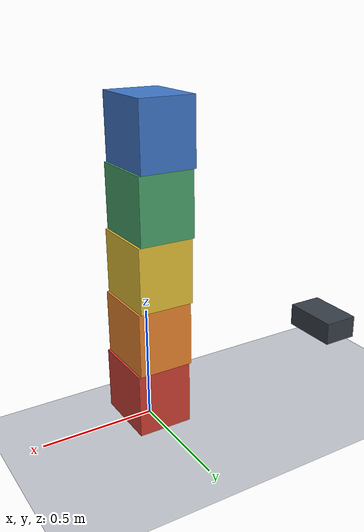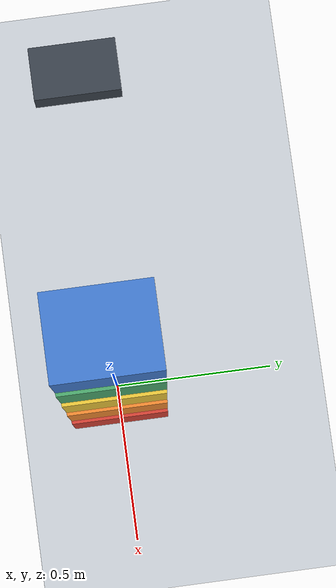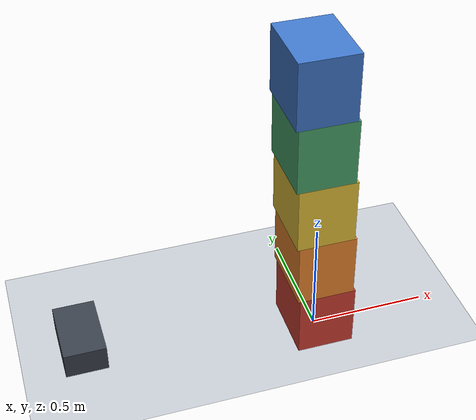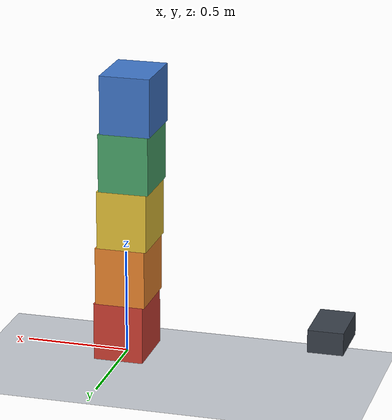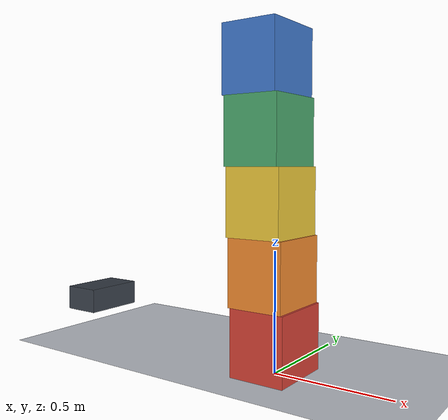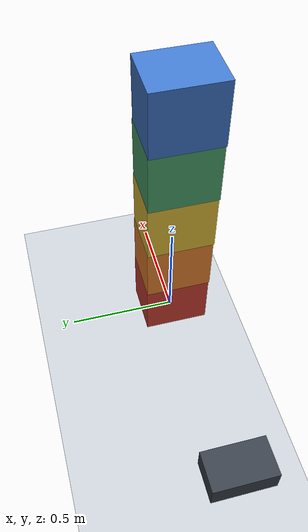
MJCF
<mujoco model="five_block_topple">
  <compiler angle="radian"/>
  <option timestep="0.002" gravity="0 0 -9.81" integrator="implicitfast" solver="Newton" iterations="80"/>
  <size nconmax="200" njmax="1000"/>
  <statistic center="0 0 0.65" extent="2.4"/>

  <visual>
    <headlight ambient="0.35 0.35 0.35" diffuse="0.65 0.65 0.65" specular="0.15 0.15 0.15"/>
  </visual>

  <worldbody>
    <light name="overhead" pos="-2 -3 5" dir="0.3 0.4 -1"/>
    <geom name="floor" type="plane" pos="0 0 0" size="3 3 0.1" friction="0.8 0.01 0.001" condim="4" rgba="0.78 0.80 0.83 1"/>

    <!-- A powered, horizontally guided ram approaches from the left. -->
    <!-- Its face contacts only the bottom block; its travel is limited. -->
    <body name="pusher" pos="-1 0 0.20">
      <joint name="pusher_slide" type="slide" axis="1 0 0" limited="true" range="0 1.45" damping="0.3" armature="0.01" solreflimit="0.01 1"/>
      <geom name="pusher_geom" type="box" size="0.085 0.14 0.055" mass="3" friction="0.35 0.005 0.0005" condim="3" solref="0.008 1" solimp="0.95 0.99 0.001" rgba="0.22 0.25 0.29 1"/>
    </body>

    <!-- Small, stable offsets favor overturning once the base is displaced. -->
    <body name="block1" pos="0 0 0.14">
      <freejoint name="block1_free"/>
      <geom name="block1_geom" type="box" size="0.12 0.15 0.14" mass="0.65" friction="0.7 0.008 0.0005" condim="4" solref="0.008 1" solimp="0.95 0.99 0.001" rgba="0.82 0.25 0.20 1"/>
    </body>

    <body name="block2" pos="-0.01 0 0.42">
      <freejoint name="block2_free"/>
      <geom name="block2_geom" type="box" size="0.12 0.15 0.14" mass="0.65" friction="0.7 0.008 0.0005" condim="4" solref="0.008 1" solimp="0.95 0.99 0.001" rgba="0.93 0.53 0.18 1"/>
    </body>

    <body name="block3" pos="-0.02 0 0.70">
      <freejoint name="block3_free"/>
      <geom name="block3_geom" type="box" size="0.12 0.15 0.14" mass="0.65" friction="0.7 0.008 0.0005" condim="4" solref="0.008 1" solimp="0.95 0.99 0.001" rgba="0.91 0.77 0.22 1"/>
    </body>

    <body name="block4" pos="-0.03 0 0.98">
      <freejoint name="block4_free"/>
      <geom name="block4_geom" type="box" size="0.12 0.15 0.14" mass="0.65" friction="0.7 0.008 0.0005" condim="4" solref="0.008 1" solimp="0.95 0.99 0.001" rgba="0.29 0.65 0.42 1"/>
    </body>

    <body name="block5" pos="-0.04 0 1.26">
      <freejoint name="block5_free"/>
      <geom name="block5_geom" type="box" size="0.12 0.15 0.14" mass="0.65" friction="0.7 0.008 0.0005" condim="4" solref="0.008 1" solimp="0.95 0.99 0.001" rgba="0.25 0.47 0.80 1"/>
    </body>
  </worldbody>

  <actuator>
    <motor name="pusher_motor" joint="pusher_slide" gear="1" ctrllimited="true" ctrlrange="0 12"/>
  </actuator>

  <keyframe>
    <key name="start" qpos="0 0 0 0.14 1 0 0 0 -0.01 0 0.42 1 0 0 0 -0.02 0 0.70 1 0 0 0 -0.03 0 0.98 1 0 0 0 -0.04 0 1.26 1 0 0 0" ctrl="12"/>
  </keyframe>
</mujoco>
